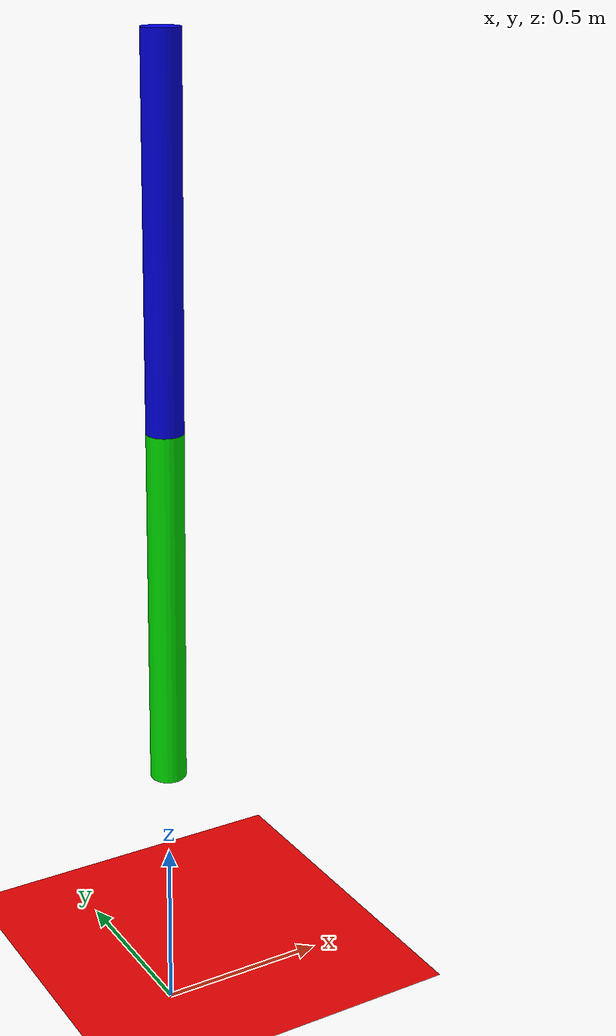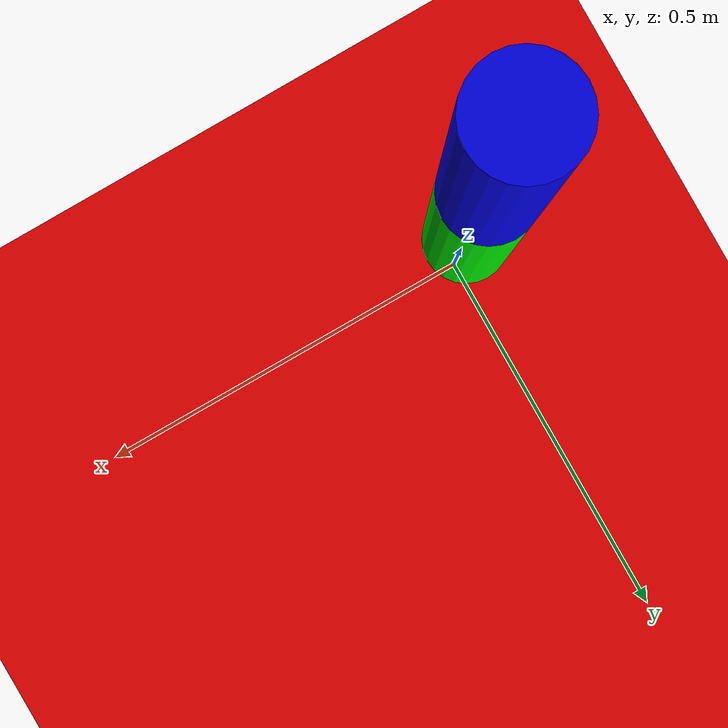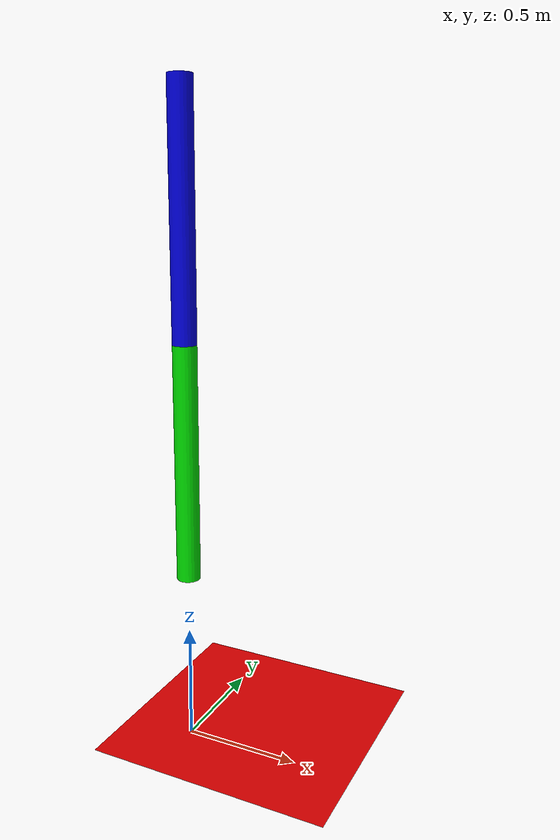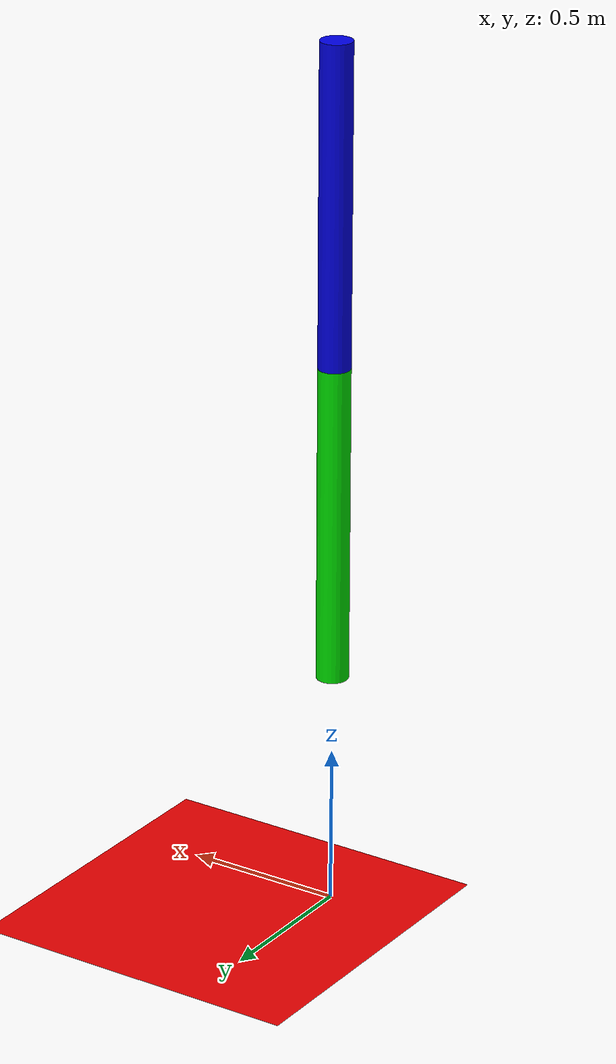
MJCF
<mujoco>
  <option timestep="0.00005" integrator="RK4" gravity="0 0 -9.81">
	<flag energy="enable" contact="disable"/>
  </option>

  <worldbody>
        <light diffuse=".5 .5 .5" pos="0 0 3" dir="0 0 -1"/>
    <geom type="plane" size="1 1 0.1" rgba=".9 0 0 1"/>
    <body pos="0 0 1.25" euler="0 180 0">
      <joint name="pin1" type="hinge" pos="0 0 -.5" axis="0 -1 0"/>
      <geom type="cylinder" size=".05 .5" rgba="0 .9 0 1"/>
	  <inertial mass="1" pos="0 0 0" diaginertia="0.1 0.1 0.1"/>
	  <body pos="0 0 -1" euler="0 0 0">
		<joint name="pin2" type="hinge" pos="0 0 -.5" axis="0 -1 0"/>
		<geom type="cylinder" size=".05 .5" rgba="0 0 .9 1"/>
		<inertial mass="1" pos="0 0 0" diaginertia="0.1 0.1 0.1"/>
	  </body>
    </body>
  </worldbody>
  <actuator>
	<motor name="torque2" joint="pin2" gear="1" ctrlrange="-1000 1000" ctrllimited="true"/>
  </actuator>
</mujoco>
